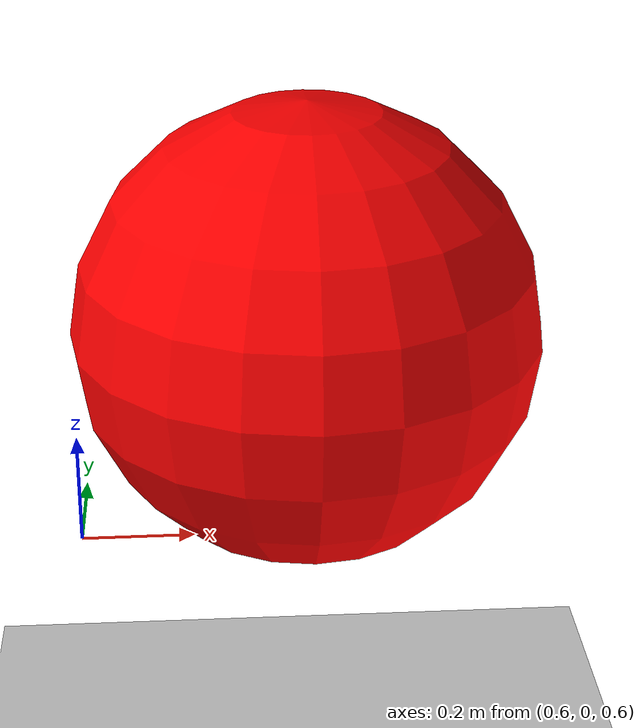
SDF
<?xml version="1.0" ?>
<sdf version="1.6">
  <world name="calibration_world">
    <!-- A global light source -->
    <include>
      <uri>model://sun</uri>
    </include>
    <!-- A ground plane -->
    <include>
      <uri>model://ground_plane</uri>
    </include>
    <!-- a circle grid which has to calibrated in a way that one circle has a diameter of 0.034
		 to check if a circle diameter is 0.034m use cylinder_measure model-->

	  <include>
	    <uri>model://opencv_chessboard</uri>
	    <name>opencv_chessboard plate</name>
      <pose>1.0 0.0 1.0 3.14 0 0</pose>
    </include>

    	<include>
	    <uri>model://sphere</uri>
	    <name>sphere</name>
      <pose>1.0 0.0 1.0 0 0 0</pose>
    </include>

    <include>
	    <uri>model://directional_light</uri>
    </include>
  </world>
</sdf>

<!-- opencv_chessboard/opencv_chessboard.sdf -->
<sdf version="1.6">
  <model name="opencv_chessboard">
    <pose>0 0 0.5 0 0 0</pose>
    <static>true</static>
    <link name="link">
      <inertial>
        <mass>1.0</mass>
        <inertia> <!-- inertias are tricky to compute -->
          <!-- http://gazebosim.org/tutorials?tut=inertia&cat=build_robot -->
          <ixx>0.083</ixx>       <!-- for a box: ixx = 0.083 * mass * (y*y + z*z) -->
          <ixy>0.0</ixy>         <!-- for a box: ixy = 0 -->
          <ixz>0.0</ixz>         <!-- for a box: ixz = 0 -->
          <iyy>0.083</iyy>       <!-- for a box: iyy = 0.083 * mass * (x*x + z*z) -->
          <iyz>0.0</iyz>         <!-- for a box: iyz = 0 -->
          <izz>0.083</izz>       <!-- for a box: izz = 0.083 * mass * (x*x + y*y) -->
        </inertia>
      </inertial>
      <collision name="collision">
        <geometry>
          <box>
            <size>0.216199 0.303780 0.001</size>   <!-- board size to have 0.025m square size-->
          </box>
        </geometry>
      </collision>
      <visual name="visual">
        <geometry>
          <box>
            <size>0.216199 0.303780 0.001</size>    <!-- board size to have 0.025m square size-->
          </box>
        </geometry>
        <material>
           <script>
            <uri>model://opencv_chessboard/materials/scripts</uri>
            <uri>model://opencv_chessboard/materials/textures</uri>
             <name>opencv_chessboard</name>
           </script>
        </material>
      </visual>
    </link>
  </model>
</sdf>

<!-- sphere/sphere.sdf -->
<sdf version="1.6">
  <model name="sphere">
    <pose>0 0 0.0 0 0 0</pose>
    <static>true</static>
    <link name="link">
      <inertial>
        <mass>1.0</mass>
        <inertia> <!-- inertias are tricky to compute -->
          <!-- http://gazebosim.org/tutorials?tut=inertia&cat=build_robot -->
          <ixx>0.083</ixx>       <!-- for a box: ixx = 0.083 * mass * (y*y + z*z) -->
          <ixy>0.0</ixy>         <!-- for a box: ixy = 0 -->
          <ixz>0.0</ixz>         <!-- for a box: ixz = 0 -->
          <iyy>0.083</iyy>       <!-- for a box: iyy = 0.083 * mass * (x*x + z*z) -->
          <iyz>0.0</iyz>         <!-- for a box: iyz = 0 -->
          <izz>0.083</izz>       <!-- for a box: izz = 0.083 * mass * (x*x + y*y) -->
        </inertia>
      </inertial>
      <collision name="collision">
        <geometry>
          <sphere>
            <radius>0.0</radius><!-- measure line is a box, change the x length to whatever you want and use it to measure-->
          </sphere>
        </geometry>
      </collision>
      <visual name="visual">
        <geometry>
          <sphere>
            <radius>0.4</radius><!-- measure line is a box, change the x length to whatever you want and use it to measure-->
          </sphere>
        </geometry>
	<transparency>0.05</transparency>
	<material>
	   <diffuse>1 0 0 1</diffuse>
	</material>
      </visual>
    </link>
  </model>
</sdf>
